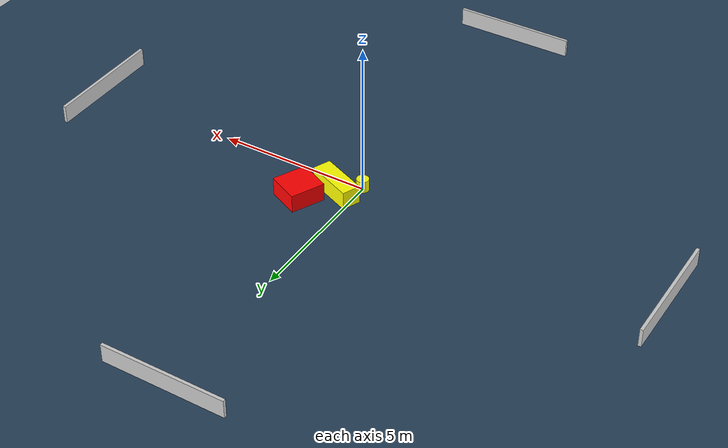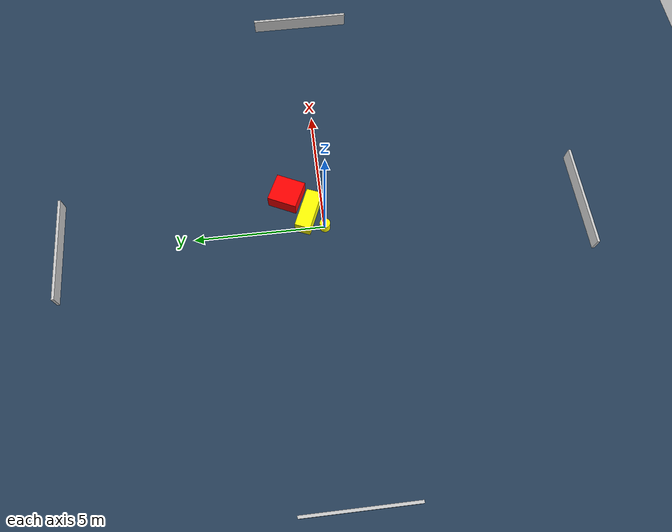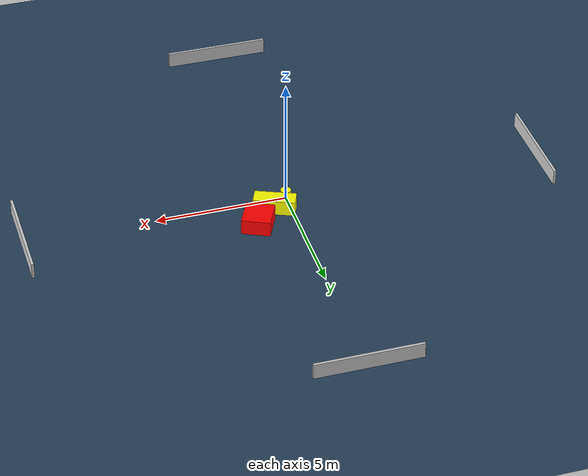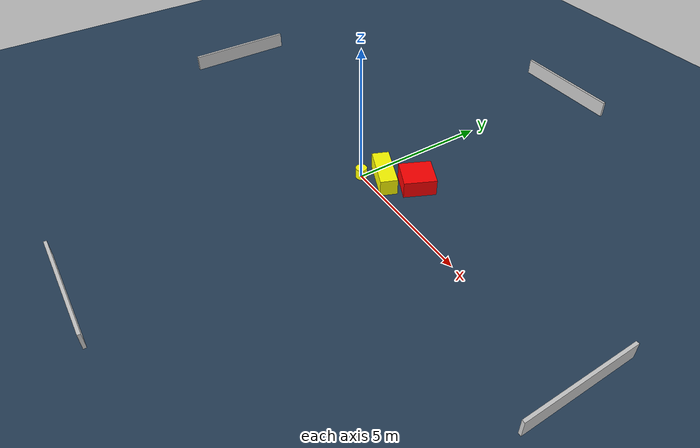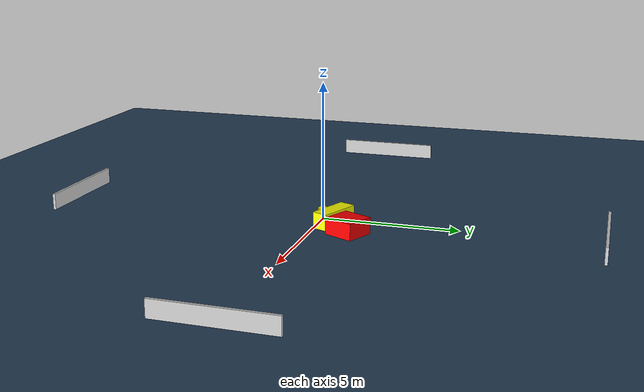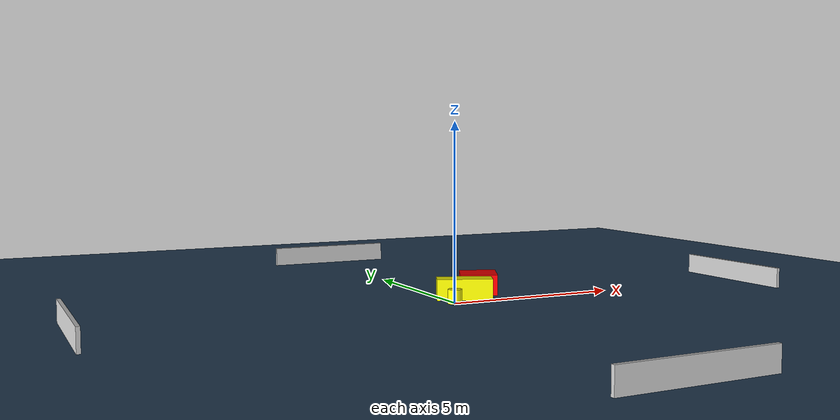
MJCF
<?xml version="1.0" ?>
<mujoco model="generated_environment">
  <option timestep="0.01" integrator="RK4" cone="elliptic"/>
  <default>
    <geom density="1"/>
  </default>
  <asset>
    <texture builtin="gradient" height="3072" name="skybox" rgb1="0.3 0.5 0.7" rgb2="0 0 0" type="skybox" width="512"/>
    <texture builtin="checker" height="300" name="groundplane" rgb1="0.2 0.3 0.4" rgb2="0.1 0.2 0.3" type="2d" width="300"/>
    <material name="groundplane" reflectance="0.2" texrepeat="5 5" texture="groundplane"/>
  </asset>
  <worldbody>
    <light dir="0 0 -1" directional="true" pos="0 0 1.5"/>
    <geom condim="3" friction="0.5 0.005 0.001" material="groundplane" name="floor" pos="0 0 0" size="0 0 0.05" type="plane"/>
    <body name="walls">
      <geom name="wall_1" condim="4" pos="-10.0 0.0 0.3" rgba="0.800000011920929 0.800000011920929 0.800000011920929 1.0" size="0.05 2.0 0.3" type="box"/>
      <geom name="wall_2" condim="4" pos="10.0 0.0 0.3" rgba="0.800000011920929 0.800000011920929 0.800000011920929 1.0" size="0.05 2.0 0.3" type="box"/>
      <geom name="wall_3" condim="4" pos="0.0 -10.0 0.3" rgba="0.800000011920929 0.800000011920929 0.800000011920929 1.0" size="2.0 0.05 0.3" type="box"/>
      <geom name="wall_4" condim="4" pos="0.0 10.0 0.3" rgba="0.800000011920929 0.800000011920929 0.800000011920929 1.0" size="2.0 0.05 0.3" type="box"/>
    </body>
    <body name="robot">
      <joint name="joint_x" type="slide" pos="0 0 0" axis="1 0 0"/>
      <joint name="joint_y" type="slide" pos="0 0 0" axis="0 1 0"/>
      <geom name="robot" type="cylinder" pos="0.0 0.0 0.2" size="0.2 0.2 0.0" mass="5.0" friction="1.0 0.005 0.0001" condim="4" rgba="1.0 1.0 0.0 1.0"/>
    </body>
    <body name="obstacle_1_movable">
      <geom name="obstacle_1_movable" condim="4" pos="0.58956699505031 0.5678436962662708 0.3" euler="0 0 247.09463838576715" friction="0.0 0.005 0.001" rgba="1.0 1.0 0.0 1.0" size="0.30096927916808425 0.7882964735285136 0.3" type="box" mass="0.1"/>
      <joint type="free"/>
    </body>
    <body name="obstacle_2_static">
      <geom name="obstacle_2_static" condim="4" pos="1.4482622850184799 1.336668286022302 0.3" euler="0 0 244.7389635347108" friction="0.0 0.005 0.001" rgba="1.0 0.0 0.0 1.0" size="0.5678826161142992 0.5408323309869265 0.3" type="box"/>
    </body>
  </worldbody>
  <actuator>
    <motor name="actuator_x" joint="joint_x" gear="1" ctrlrange="-1 1"/>
    <motor name="actuator_y" joint="joint_y" gear="1" ctrlrange="-1 1"/>
  </actuator>
</mujoco>
